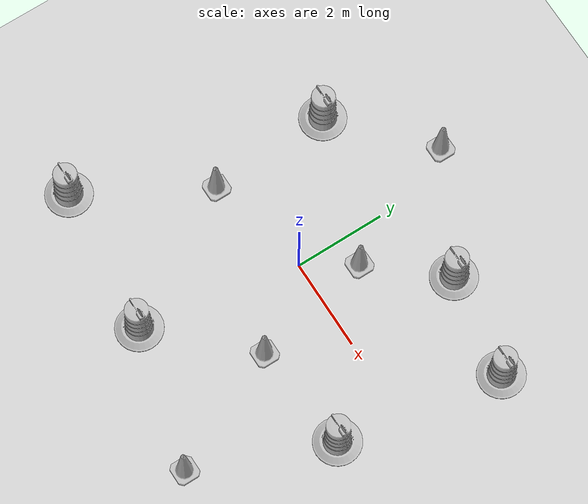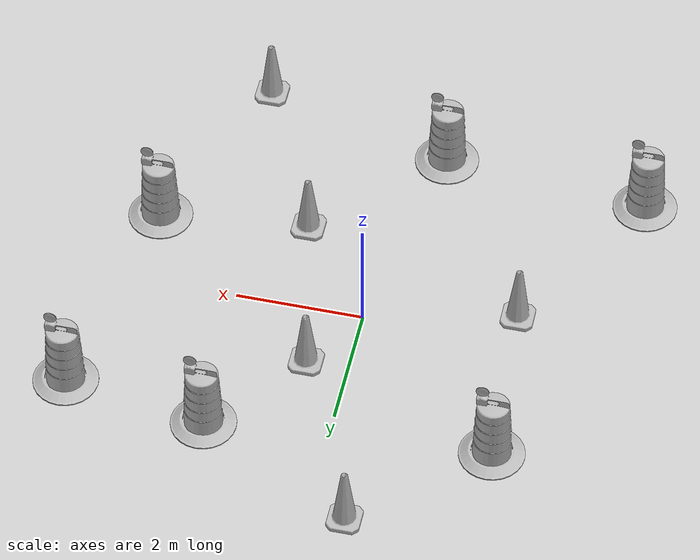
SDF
<sdf version="1.7">
 <world name="default">
  <light name="sun" type="directional">
   <pose>0 0 10 0 -0 0</pose>
   <diffuse>0.8 0.8 0.8 1</diffuse>
   <specular>0.2 0.2 0.2 1</specular>
   <attenuation>
    <range>1000</range>
    <constant>0.9</constant>
    <linear>0.01</linear>
    <quadratic>0.001</quadratic>
   </attenuation>
   <direction>-0.5 0.1 -0.9</direction>
   <spot><inner_angle>0</inner_angle><outer_angle>0</outer_angle><falloff>0</falloff></spot>
  </light>
  <model name="ground_plane">
   <static>1</static>
   <link name="link">
    <collision name="collision">
     <geometry><plane><normal>0 0 1</normal><size>100 100</size></plane></geometry>
     <surface><friction><ode><mu>100</mu><mu2>50</mu2></ode></friction></surface>
    </collision>
    <visual name="visual">
     <cast_shadows>0</cast_shadows>
     <geometry><plane><normal>0 0 1</normal><size>100 100</size></plane></geometry>
     <material>
      <script><uri>file://media/materials/scripts/gazebo.material</uri><name>Gazebo/Grey</name></script>
     </material>
    </visual>
   </link>
  </model>
  <gravity>0 0 -9.8</gravity>
  <magnetic_field>6e-06 2.3e-05 -4.2e-05</magnetic_field>
  <atmosphere type="adiabatic"/>
  <physics type="ode">
   <max_step_size>0.001</max_step_size>
   <real_time_factor>1</real_time_factor>
   <real_time_update_rate>1000</real_time_update_rate>
  </physics>
  <scene><ambient>0.4 0.4 0.4 1</ambient><background>0.7 0.7 0.7 1</background><shadows>1</shadows></scene>
  <audio><device>default</device></audio>
  <spherical_coordinates>
   <surface_model>EARTH_WGS84</surface_model>
   <latitude_deg>0</latitude_deg>
   <longitude_deg>0</longitude_deg>
   <elevation>0</elevation>
   <heading_deg>0</heading_deg>
  </spherical_coordinates>
  <model name="Construction Cone">
   <link name="link">
    <collision name="collision">
     <geometry>
      <mesh><scale>10 10 10</scale><uri>model://construction_cone/meshes/construction_cone.dae</uri></mesh>
     </geometry>
    </collision>
    <visual name="visual">
     <geometry>
      <mesh><scale>10 10 10</scale><uri>model://construction_cone/meshes/construction_cone.dae</uri></mesh>
     </geometry>
    </visual>
    <inertial>
     <inertia><ixx>1</ixx><ixy>0</ixy><ixz>0</ixz><iyy>1</iyy><iyz>0</iyz><izz>1</izz></inertia>
     <mass>1</mass>
    </inertial>
   </link>
   <pose>0.653527 1.05456 -0 0 -1e-06 0</pose>
  </model>
  <model name="Construction Barrel">
   <link name="link">
    <inertial>
     <pose>0 0 0.4 0 -0 0</pose>
     <mass>500</mass>
     <inertia><ixx>51.2096</ixx><iyy>51.2096</iyy><izz>25</izz><ixy>0</ixy><ixz>0</ixz><iyz>0</iyz></inertia>
    </inertial>
    <collision name="collision">
     <geometry><mesh><uri>model://construction_barrel/meshes/construction_barrel.dae</uri></mesh></geometry>
    </collision>
    <visual name="visual">
     <geometry><mesh><uri>model://construction_barrel/meshes/construction_barrel.dae</uri></mesh></geometry>
    </visual>
   </link>
   <pose>1.91046 2.53832 -1e-06 4e-06 -1e-06 -3.4e-05</pose>
  </model>
  <model name="Construction Cone_0">
   <link name="link">
    <collision name="collision">
     <geometry>
      <mesh><scale>10 10 10</scale><uri>model://construction_cone/meshes/construction_cone.dae</uri></mesh>
     </geometry>
    </collision>
    <visual name="visual">
     <geometry>
      <mesh><scale>10 10 10</scale><uri>model://construction_cone/meshes/construction_cone.dae</uri></mesh>
     </geometry>
    </visual>
    <inertial>
     <inertia><ixx>1</ixx><ixy>0</ixy><ixz>0</ixz><iyy>1</iyy><iyz>0</iyz><izz>1</izz></inertia>
     <mass>1</mass>
    </inertial>
   </link>
   <pose>1.22419 -1.60211 -0 0 -0 0</pose>
  </model>
  <model name="Construction Cone_1">
   <link name="link">
    <collision name="collision">
     <geometry>
      <mesh><scale>10 10 10</scale><uri>model://construction_cone/meshes/construction_cone.dae</uri></mesh>
     </geometry>
    </collision>
    <visual name="visual">
     <geometry>
      <mesh><scale>10 10 10</scale><uri>model://construction_cone/meshes/construction_cone.dae</uri></mesh>
     </geometry>
    </visual>
    <inertial>
     <inertia><ixx>1</ixx><ixy>0</ixy><ixz>0</ixz><iyy>1</iyy><iyz>0</iyz><izz>1</izz></inertia>
     <mass>1</mass>
    </inertial>
   </link>
   <pose>-2.34312 -0.514086 -0 0 -0 0</pose>
  </model>
  <model name="Construction Barrel_0">
   <link name="link">
    <inertial>
     <pose>0 0 0.4 0 -0 0</pose>
     <mass>500</mass>
     <inertia><ixx>51.2096</ixx><iyy>51.2096</iyy><izz>25</izz><ixy>0</ixy><ixz>0</ixz><iyz>0</iyz></inertia>
    </inertial>
    <collision name="collision">
     <geometry><mesh><uri>model://construction_barrel/meshes/construction_barrel.dae</uri></mesh></geometry>
    </collision>
    <visual name="visual">
     <geometry><mesh><uri>model://construction_barrel/meshes/construction_barrel.dae</uri></mesh></geometry>
    </visual>
   </link>
   <pose>-0.610728 -3.45488 -0 0 0 -3e-05</pose>
  </model>
  <model name="Construction Cone_2">
   <link name="link">
    <collision name="collision">
     <geometry>
      <mesh><scale>10 10 10</scale><uri>model://construction_cone/meshes/construction_cone.dae</uri></mesh>
     </geometry>
    </collision>
    <visual name="visual">
     <geometry>
      <mesh><scale>10 10 10</scale><uri>model://construction_cone/meshes/construction_cone.dae</uri></mesh>
     </geometry>
    </visual>
    <inertial>
     <inertia><ixx>1</ixx><ixy>0</ixy><ixz>0</ixz><iyy>1</iyy><iyz>0</iyz><izz>1</izz></inertia>
     <mass>1</mass>
    </inertial>
   </link>
   <pose>-0.579213 3.87014 -0 0 -0 0</pose>
  </model>
  <model name="Construction Barrel_1">
   <link name="link">
    <inertial>
     <pose>0 0 0.4 0 -0 0</pose>
     <mass>500</mass>
     <inertia><ixx>51.2096</ixx><iyy>51.2096</iyy><izz>25</izz><ixy>0</ixy><ixz>0</ixz><iyz>0</iyz></inertia>
    </inertial>
    <collision name="collision">
     <geometry><mesh><uri>model://construction_barrel/meshes/construction_barrel.dae</uri></mesh></geometry>
    </collision>
    <visual name="visual">
     <geometry><mesh><uri>model://construction_barrel/meshes/construction_barrel.dae</uri></mesh></geometry>
    </visual>
   </link>
   <pose>-2.47308 2.17528 -2e-06 -5e-06 -4e-06 -2.8e-05</pose>
  </model>
  <model name="Construction Barrel_2">
   <link name="link">
    <inertial>
     <pose>0 0 0.4 0 -0 0</pose>
     <mass>500</mass>
     <inertia><ixx>51.2096</ixx><iyy>51.2096</iyy><izz>25</izz><ixy>0</ixy><ixz>0</ixz><iyz>0</iyz></inertia>
    </inertial>
    <collision name="collision">
     <geometry><mesh><uri>model://construction_barrel/meshes/construction_barrel.dae</uri></mesh></geometry>
    </collision>
    <visual name="visual">
     <geometry><mesh><uri>model://construction_barrel/meshes/construction_barrel.dae</uri></mesh></geometry>
    </visual>
   </link>
   <pose>3.56091 -1.36346 -0 0 0 -2.9e-05</pose>
  </model>
  <model name="Construction Barrel_3">
   <link name="link">
    <inertial>
     <pose>0 0 0.4 0 -0 0</pose>
     <mass>500</mass>
     <inertia><ixx>51.2096</ixx><iyy>51.2096</iyy><izz>25</izz><ixy>0</ixy><ixz>0</ixz><iyz>0</iyz></inertia>
    </inertial>
    <collision name="collision">
     <geometry><mesh><uri>model://construction_barrel/meshes/construction_barrel.dae</uri></mesh></geometry>
    </collision>
    <visual name="visual">
     <geometry><mesh><uri>model://construction_barrel/meshes/construction_barrel.dae</uri></mesh></geometry>
    </visual>
   </link>
   <pose>4.16359 2.18525 -1e-06 -5e-06 -3e-06 -2.6e-05</pose>
  </model>
  <model name="Construction Cone_3">
   <link name="link">
    <collision name="collision">
     <geometry>
      <mesh><scale>10 10 10</scale><uri>model://construction_cone/meshes/construction_cone.dae</uri></mesh>
     </geometry>
    </collision>
    <visual name="visual">
     <geometry>
      <mesh><scale>10 10 10</scale><uri>model://construction_cone/meshes/construction_cone.dae</uri></mesh>
     </geometry>
    </visual>
    <inertial>
     <inertia><ixx>1</ixx><ixy>0</ixy><ixz>0</ixz><iyy>1</iyy><iyz>0</iyz><izz>1</izz></inertia>
     <mass>1</mass>
    </inertial>
   </link>
   <pose>2.43367 -4.25583 -0 0 -0 0</pose>
  </model>
  <model name="Construction Barrel_4">
   <link name="link">
    <inertial>
     <pose>0 0 0.4 0 -0 0</pose>
     <mass>500</mass>
     <inertia><ixx>51.2096</ixx><iyy>51.2096</iyy><izz>25</izz><ixy>0</ixy><ixz>0</ixz><iyz>0</iyz></inertia>
    </inertial>
    <collision name="collision">
     <geometry><mesh><uri>model://construction_barrel/meshes/construction_barrel.dae</uri></mesh></geometry>
    </collision>
    <visual name="visual">
     <geometry><mesh><uri>model://construction_barrel/meshes/construction_barrel.dae</uri></mesh></geometry>
    </visual>
   </link>
   <pose>-3.86428 -3.16134 -1e-06 4e-06 -1e-06 -2.8e-05</pose>
  </model>
 </world>
</sdf>
